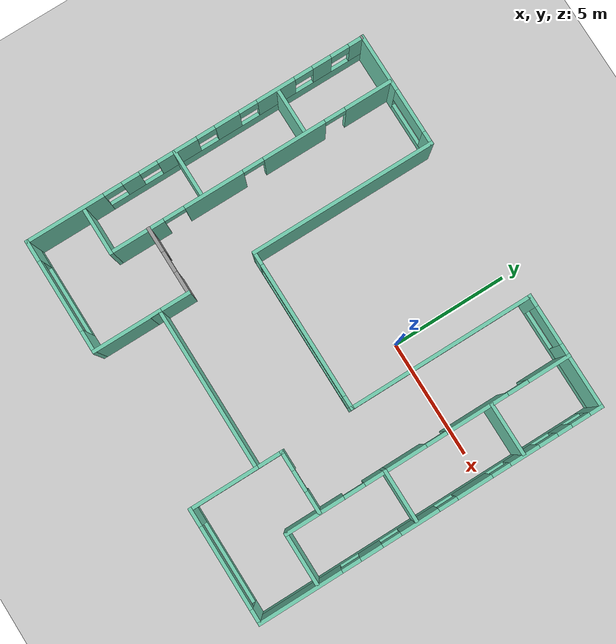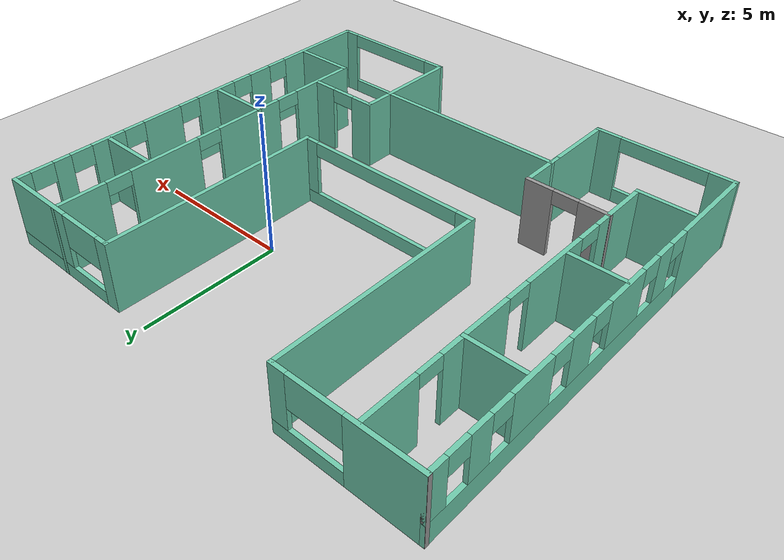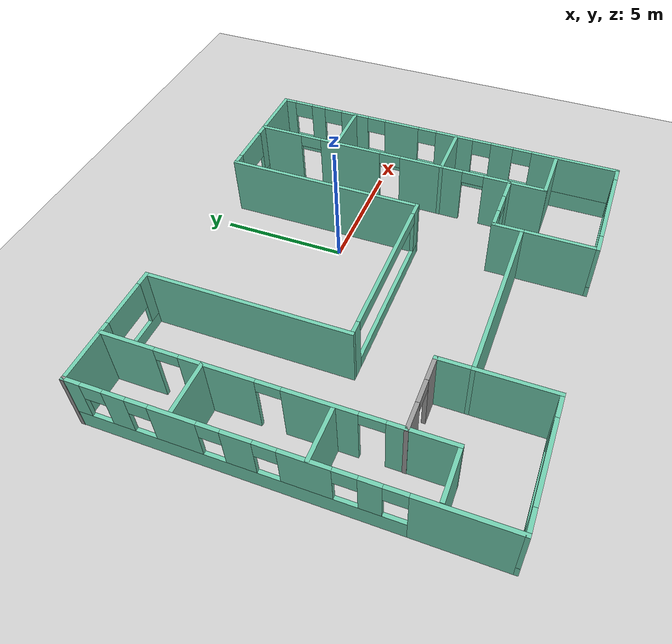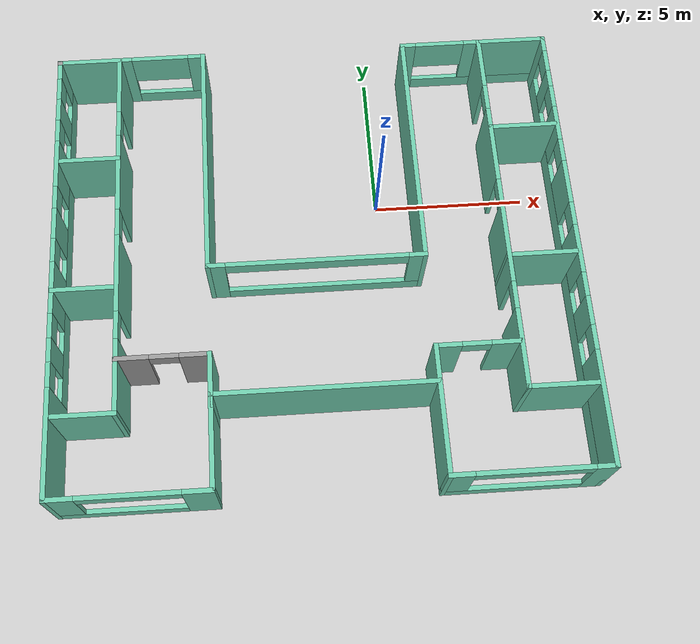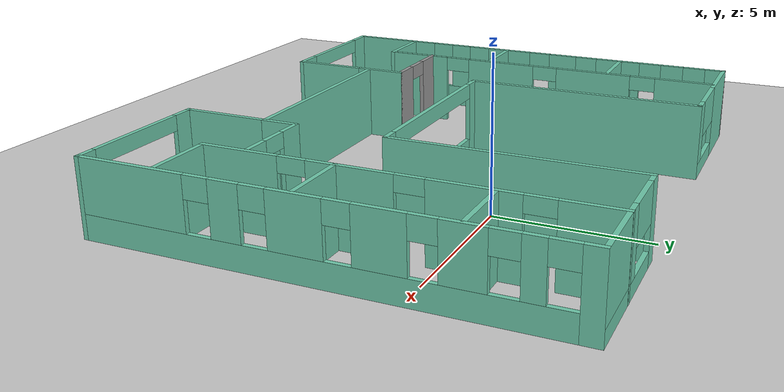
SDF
<sdf version="1.6">
 <world name="default">
  <model name="ground_plane">
   <static>1</static>
   <link name="link">
    <collision name="collision">
     <geometry><plane><normal>0 0 1</normal><size>100 100</size></plane></geometry>
     <surface>
      <contact><collide_bitmask>65535</collide_bitmask></contact>
      <friction><ode><mu>100</mu><mu2>50</mu2></ode></friction>
     </surface>
    </collision>
    <visual name="visual">
     <cast_shadows>0</cast_shadows>
     <geometry><plane><normal>0 0 1</normal><size>100 100</size></plane></geometry>
     <material>
      <script><uri>file://media/materials/scripts/gazebo.material</uri><name>Gazebo/Grey</name></script>
     </material>
    </visual>
   </link>
  </model>
  <model name="building">
   <pose>-2.2336 -2.43171 0 0 -0 0</pose>
   <link name="Wall_0">
    <collision name="Wall_0_Collision">
     <geometry><box><size>0.16 0.15 2.5</size></box></geometry>
     <pose>0 0 1.25 0 -0 0</pose>
    </collision>
    <visual name="Wall_0_Visual">
     <pose>0 0 1.25 0 -0 0</pose>
     <geometry><box><size>0.16 0.15 2.5</size></box></geometry>
     <material>
      <script><uri>file://media/materials/scripts/gazebo.material</uri><name>Gazebo/Grey</name></script>
      <ambient>1 1 1 1</ambient>
     </material>
     <meta><layer>0</layer></meta>
    </visual>
    <pose>-8.275 7.4223 0 0 -0 0</pose>
   </link>
   <link name="Wall_1">
    <pose>-5.845 7.4223 0 0 -0 0</pose>
    <visual name="Wall_1_Visual_0">
     <pose>-1.24921 0 1.25 0 -0 0</pose>
     <geometry><box><size>2.50157 0.15 2.5</size></box></geometry>
     <material>
      <script><uri>file://media/materials/scripts/gazebo.material</uri><name>Gazebo/Grey</name></script>
      <ambient>0.435294 0.796078 0.67451 1</ambient>
     </material>
     <meta><layer>0</layer></meta>
    </visual>
    <collision name="Wall_1_Collision_0">
     <geometry><box><size>2.50157 0.15 2.5</size></box></geometry>
     <pose>-1.24921 0 1.25 0 -0 0</pose>
    </collision>
    <visual name="Wall_1_Visual_1">
     <pose>1.25079 0 0.25 0 -0 0</pose>
     <geometry><box><size>2.49843 0.15 0.5</size></box></geometry>
     <material>
      <script><uri>file://media/materials/scripts/gazebo.material</uri><name>Gazebo/Grey</name></script>
      <ambient>0.435294 0.796078 0.67451 1</ambient>
     </material>
     <meta><layer>0</layer></meta>
    </visual>
    <collision name="Wall_1_Collision_1">
     <geometry><box><size>2.49843 0.15 0.5</size></box></geometry>
     <pose>1.25079 0 0.25 0 -0 0</pose>
    </collision>
    <visual name="Wall_1_Visual_2">
     <pose>2.20141 0 1.5 0 -0 0</pose>
     <geometry><box><size>0.597181 0.15 2</size></box></geometry>
     <material>
      <script><uri>file://media/materials/scripts/gazebo.material</uri><name>Gazebo/Grey</name></script>
      <ambient>0.435294 0.796078 0.67451 1</ambient>
     </material>
     <meta><layer>0</layer></meta>
    </visual>
    <collision name="Wall_1_Collision_2">
     <geometry><box><size>0.597181 0.15 2</size></box></geometry>
     <pose>2.20141 0 1.5 0 -0 0</pose>
    </collision>
    <visual name="Wall_1_Visual_3">
     <pose>0.952195 0 1.9 0 -0 0</pose>
     <geometry><box><size>1.90125 0.15 1.2</size></box></geometry>
     <material>
      <script><uri>file://media/materials/scripts/gazebo.material</uri><name>Gazebo/Grey</name></script>
      <ambient>0.435294 0.796078 0.67451 1</ambient>
     </material>
     <meta><layer>0</layer></meta>
    </visual>
    <collision name="Wall_1_Collision_3">
     <geometry><box><size>1.90125 0.15 1.2</size></box></geometry>
     <pose>0.952195 0 1.9 0 -0 0</pose>
    </collision>
   </link>
   <link name="Wall_10">
    <collision name="Wall_10_Collision">
     <geometry><box><size>3 0.15 2.5</size></box></geometry>
     <pose>0 0 1.25 0 -0 0</pose>
    </collision>
    <visual name="Wall_10_Visual">
     <pose>0 0 1.25 0 -0 0</pose>
     <geometry><box><size>3 0.15 2.5</size></box></geometry>
     <material>
      <script><uri>file://media/materials/scripts/gazebo.material</uri><name>Gazebo/Grey</name></script>
      <ambient>0.435294 0.796078 0.67451 1</ambient>
     </material>
     <meta><layer>0</layer></meta>
    </visual>
    <pose>-3.42 -6.0027 0 0 0 -1.5708</pose>
   </link>
   <link name="Wall_11">
    <pose>-5.845 -7.4277 0 0 -0 3.14159</pose>
    <visual name="Wall_11_Visual_0">
     <pose>-2.0178 0 1.25 0 -0 0</pose>
     <geometry><box><size>0.964396 0.15 2.5</size></box></geometry>
     <material>
      <script><uri>file://media/materials/scripts/gazebo.material</uri><name>Gazebo/Grey</name></script>
      <ambient>0.435294 0.796078 0.67451 1</ambient>
     </material>
     <meta><layer>0</layer></meta>
    </visual>
    <collision name="Wall_11_Collision_0">
     <geometry><box><size>0.964396 0.15 2.5</size></box></geometry>
     <pose>-2.0178 0 1.25 0 -0 0</pose>
    </collision>
    <visual name="Wall_11_Visual_1">
     <pose>0.482198 0 0.25 0 -0 0</pose>
     <geometry><box><size>4.0356 0.15 0.5</size></box></geometry>
     <material>
      <script><uri>file://media/materials/scripts/gazebo.material</uri><name>Gazebo/Grey</name></script>
      <ambient>0.435294 0.796078 0.67451 1</ambient>
     </material>
     <meta><layer>0</layer></meta>
    </visual>
    <collision name="Wall_11_Collision_1">
     <geometry><box><size>4.0356 0.15 0.5</size></box></geometry>
     <pose>0.482198 0 0.25 0 -0 0</pose>
    </collision>
    <visual name="Wall_11_Visual_2">
     <pose>2.0292 0 1.5 0 -0 0</pose>
     <geometry><box><size>0.941604 0.15 2</size></box></geometry>
     <material>
      <script><uri>file://media/materials/scripts/gazebo.material</uri><name>Gazebo/Grey</name></script>
      <ambient>0.435294 0.796078 0.67451 1</ambient>
     </material>
     <meta><layer>0</layer></meta>
    </visual>
    <collision name="Wall_11_Collision_2">
     <geometry><box><size>0.941604 0.15 2</size></box></geometry>
     <pose>2.0292 0 1.5 0 -0 0</pose>
    </collision>
    <visual name="Wall_11_Visual_3">
     <pose>0.011396 0 2.25 0 -0 0</pose>
     <geometry><box><size>3.094 0.15 0.5</size></box></geometry>
     <material>
      <script><uri>file://media/materials/scripts/gazebo.material</uri><name>Gazebo/Grey</name></script>
      <ambient>0.435294 0.796078 0.67451 1</ambient>
     </material>
     <meta><layer>0</layer></meta>
    </visual>
    <collision name="Wall_11_Collision_3">
     <geometry><box><size>3.094 0.15 0.5</size></box></geometry>
     <pose>0.011396 0 2.25 0 -0 0</pose>
    </collision>
   </link>
   <link name="Wall_12">
    <pose>-8.27 -0.002705 0 0 -0 1.5708</pose>
    <visual name="Wall_12_Visual_0">
     <pose>-5.78698 0 1.25 0 -0 0</pose>
     <geometry><box><size>3.42604 0.15 2.5</size></box></geometry>
     <material>
      <script><uri>file://media/materials/scripts/gazebo.material</uri><name>Gazebo/Grey</name></script>
      <ambient>0.435294 0.796078 0.67451 1</ambient>
     </material>
     <meta><layer>0</layer></meta>
    </visual>
    <collision name="Wall_12_Collision_0">
     <geometry><box><size>3.42604 0.15 2.5</size></box></geometry>
     <pose>-5.78698 0 1.25 0 -0 0</pose>
    </collision>
    <visual name="Wall_12_Visual_1">
     <pose>1.71302 0 0.4 0 -0 0</pose>
     <geometry><box><size>11.574 0.15 0.8</size></box></geometry>
     <material>
      <script><uri>file://media/materials/scripts/gazebo.material</uri><name>Gazebo/Grey</name></script>
      <ambient>0.435294 0.796078 0.67451 1</ambient>
     </material>
     <meta><layer>0</layer></meta>
    </visual>
    <collision name="Wall_12_Collision_1">
     <geometry><box><size>11.574 0.15 0.8</size></box></geometry>
     <pose>1.71302 0 0.4 0 -0 0</pose>
    </collision>
    <visual name="Wall_12_Visual_2">
     <pose>-2.89391 0 1.65 0 -0 0</pose>
     <geometry><box><size>0.760102 0.15 1.7</size></box></geometry>
     <material>
      <script><uri>file://media/materials/scripts/gazebo.material</uri><name>Gazebo/Grey</name></script>
      <ambient>0.435294 0.796078 0.67451 1</ambient>
     </material>
     <meta><layer>0</layer></meta>
    </visual>
    <collision name="Wall_12_Collision_2">
     <geometry><box><size>0.760102 0.15 1.7</size></box></geometry>
     <pose>-2.89391 0 1.65 0 -0 0</pose>
    </collision>
    <visual name="Wall_12_Visual_3">
     <pose>-0.844363 0 1.65 0 -0 0</pose>
     <geometry><box><size>1.73899 0.15 1.7</size></box></geometry>
     <material>
      <script><uri>file://media/materials/scripts/gazebo.material</uri><name>Gazebo/Grey</name></script>
      <ambient>0.435294 0.796078 0.67451 1</ambient>
     </material>
     <meta><layer>0</layer></meta>
    </visual>
    <collision name="Wall_12_Collision_3">
     <geometry><box><size>1.73899 0.15 1.7</size></box></geometry>
     <pose>-0.844363 0 1.65 0 -0 0</pose>
    </collision>
    <visual name="Wall_12_Visual_4">
     <pose>1.35813 0 1.65 0 -0 0</pose>
     <geometry><box><size>1.066 0.15 1.7</size></box></geometry>
     <material>
      <script><uri>file://media/materials/scripts/gazebo.material</uri><name>Gazebo/Grey</name></script>
      <ambient>0.435294 0.796078 0.67451 1</ambient>
     </material>
     <meta><layer>0</layer></meta>
    </visual>
    <collision name="Wall_12_Collision_4">
     <geometry><box><size>1.066 0.15 1.7</size></box></geometry>
     <pose>1.35813 0 1.65 0 -0 0</pose>
    </collision>
    <visual name="Wall_12_Visual_5">
     <pose>3.53004 0 1.65 0 -0 0</pose>
     <geometry><box><size>1.67781 0.15 1.7</size></box></geometry>
     <material>
      <script><uri>file://media/materials/scripts/gazebo.material</uri><name>Gazebo/Grey</name></script>
      <ambient>0.435294 0.796078 0.67451 1</ambient>
     </material>
     <meta><layer>0</layer></meta>
    </visual>
    <collision name="Wall_12_Collision_5">
     <geometry><box><size>1.67781 0.15 1.7</size></box></geometry>
     <pose>3.53004 0 1.65 0 -0 0</pose>
    </collision>
    <visual name="Wall_12_Visual_6">
     <pose>5.57958 0 1.65 0 -0 0</pose>
     <geometry><box><size>0.821282 0.15 1.7</size></box></geometry>
     <material>
      <script><uri>file://media/materials/scripts/gazebo.material</uri><name>Gazebo/Grey</name></script>
      <ambient>0.435294 0.796078 0.67451 1</ambient>
     </material>
     <meta><layer>0</layer></meta>
    </visual>
    <collision name="Wall_12_Collision_6">
     <geometry><box><size>0.821282 0.15 1.7</size></box></geometry>
     <pose>5.57958 0 1.65 0 -0 0</pose>
    </collision>
    <visual name="Wall_12_Visual_7">
     <pose>7.14511 0 1.65 0 -0 0</pose>
     <geometry><box><size>0.709774 0.15 1.7</size></box></geometry>
     <material>
      <script><uri>file://media/materials/scripts/gazebo.material</uri><name>Gazebo/Grey</name></script>
      <ambient>0.435294 0.796078 0.67451 1</ambient>
     </material>
     <meta><layer>0</layer></meta>
    </visual>
    <collision name="Wall_12_Collision_7">
     <geometry><box><size>0.709774 0.15 1.7</size></box></geometry>
     <pose>7.14511 0 1.65 0 -0 0</pose>
    </collision>
    <visual name="Wall_12_Visual_8">
     <pose>-3.67396 0 2.15 0 -0 0</pose>
     <geometry><box><size>0.8 0.15 0.7</size></box></geometry>
     <material>
      <script><uri>file://media/materials/scripts/gazebo.material</uri><name>Gazebo/Grey</name></script>
      <ambient>0.435294 0.796078 0.67451 1</ambient>
     </material>
     <meta><layer>0</layer></meta>
    </visual>
    <collision name="Wall_12_Collision_8">
     <geometry><box><size>0.8 0.15 0.7</size></box></geometry>
     <pose>-3.67396 0 2.15 0 -0 0</pose>
    </collision>
    <visual name="Wall_12_Visual_9">
     <pose>-2.11386 0 2.15 0 -0 0</pose>
     <geometry><box><size>0.8 0.15 0.7</size></box></geometry>
     <material>
      <script><uri>file://media/materials/scripts/gazebo.material</uri><name>Gazebo/Grey</name></script>
      <ambient>0.435294 0.796078 0.67451 1</ambient>
     </material>
     <meta><layer>0</layer></meta>
    </visual>
    <collision name="Wall_12_Collision_9">
     <geometry><box><size>0.8 0.15 0.7</size></box></geometry>
     <pose>-2.11386 0 2.15 0 -0 0</pose>
    </collision>
    <visual name="Wall_12_Visual_10">
     <pose>0.425131 0 2.15 0 -0 0</pose>
     <geometry><box><size>0.8 0.15 0.7</size></box></geometry>
     <material>
      <script><uri>file://media/materials/scripts/gazebo.material</uri><name>Gazebo/Grey</name></script>
      <ambient>0.435294 0.796078 0.67451 1</ambient>
     </material>
     <meta><layer>0</layer></meta>
    </visual>
    <collision name="Wall_12_Collision_10">
     <geometry><box><size>0.8 0.15 0.7</size></box></geometry>
     <pose>0.425131 0 2.15 0 -0 0</pose>
    </collision>
    <visual name="Wall_12_Visual_11">
     <pose>2.29114 0 2.15 0 -0 0</pose>
     <geometry><box><size>0.8 0.15 0.7</size></box></geometry>
     <material>
      <script><uri>file://media/materials/scripts/gazebo.material</uri><name>Gazebo/Grey</name></script>
      <ambient>0.435294 0.796078 0.67451 1</ambient>
     </material>
     <meta><layer>0</layer></meta>
    </visual>
    <collision name="Wall_12_Collision_11">
     <geometry><box><size>0.8 0.15 0.7</size></box></geometry>
     <pose>2.29114 0 2.15 0 -0 0</pose>
    </collision>
    <visual name="Wall_12_Visual_12">
     <pose>4.76894 0 2.15 0 -0 0</pose>
     <geometry><box><size>0.8 0.15 0.7</size></box></geometry>
     <material>
      <script><uri>file://media/materials/scripts/gazebo.material</uri><name>Gazebo/Grey</name></script>
      <ambient>0.435294 0.796078 0.67451 1</ambient>
     </material>
     <meta><layer>0</layer></meta>
    </visual>
    <collision name="Wall_12_Collision_12">
     <geometry><box><size>0.8 0.15 0.7</size></box></geometry>
     <pose>4.76894 0 2.15 0 -0 0</pose>
    </collision>
    <visual name="Wall_12_Visual_13">
     <pose>6.39023 0 2.15 0 -0 0</pose>
     <geometry><box><size>0.8 0.15 0.7</size></box></geometry>
     <material>
      <script><uri>file://media/materials/scripts/gazebo.material</uri><name>Gazebo/Grey</name></script>
      <ambient>0.435294 0.796078 0.67451 1</ambient>
     </material>
     <meta><layer>0</layer></meta>
    </visual>
    <collision name="Wall_12_Collision_13">
     <geometry><box><size>0.8 0.15 0.7</size></box></geometry>
     <pose>6.39023 0 2.15 0 -0 0</pose>
    </collision>
   </link>
   <link name="Wall_14">
    <pose>-6.2584 1.1884 0 0 0 -1.5708</pose>
    <visual name="Wall_14_Visual_0">
     <pose>-5.21539 0 1.25 0 -0 0</pose>
     <geometry><box><size>2.06921 0.15 2.5</size></box></geometry>
     <material>
      <script><uri>file://media/materials/scripts/gazebo.material</uri><name>Gazebo/Grey</name></script>
      <ambient>0.435294 0.796078 0.67451 1</ambient>
     </material>
     <meta><layer>0</layer></meta>
    </visual>
    <collision name="Wall_14_Collision_0">
     <geometry><box><size>2.06921 0.15 2.5</size></box></geometry>
     <pose>-5.21539 0 1.25 0 -0 0</pose>
    </collision>
    <visual name="Wall_14_Visual_1">
     <pose>-1.91067 0 1.25 0 -0 0</pose>
     <geometry><box><size>2.74024 0.15 2.5</size></box></geometry>
     <material>
      <script><uri>file://media/materials/scripts/gazebo.material</uri><name>Gazebo/Grey</name></script>
      <ambient>0.435294 0.796078 0.67451 1</ambient>
     </material>
     <meta><layer>0</layer></meta>
    </visual>
    <collision name="Wall_14_Collision_1">
     <geometry><box><size>2.74024 0.15 2.5</size></box></geometry>
     <pose>-1.91067 0 1.25 0 -0 0</pose>
    </collision>
    <visual name="Wall_14_Visual_2">
     <pose>1.65309 0 1.25 0 -0 0</pose>
     <geometry><box><size>2.58729 0.15 2.5</size></box></geometry>
     <material>
      <script><uri>file://media/materials/scripts/gazebo.material</uri><name>Gazebo/Grey</name></script>
      <ambient>0.435294 0.796078 0.67451 1</ambient>
     </material>
     <meta><layer>0</layer></meta>
    </visual>
    <collision name="Wall_14_Collision_2">
     <geometry><box><size>2.58729 0.15 2.5</size></box></geometry>
     <pose>1.65309 0 1.25 0 -0 0</pose>
    </collision>
    <visual name="Wall_14_Visual_3">
     <pose>5.04837 0 1.25 0 -0 0</pose>
     <geometry><box><size>2.40327 0.15 2.5</size></box></geometry>
     <material>
      <script><uri>file://media/materials/scripts/gazebo.material</uri><name>Gazebo/Grey</name></script>
      <ambient>0.435294 0.796078 0.67451 1</ambient>
     </material>
     <meta><layer>0</layer></meta>
    </visual>
    <collision name="Wall_14_Collision_3">
     <geometry><box><size>2.40327 0.15 2.5</size></box></geometry>
     <pose>5.04837 0 1.25 0 -0 0</pose>
    </collision>
    <visual name="Wall_14_Visual_4">
     <pose>-3.73079 0 2.25 0 -0 0</pose>
     <geometry><box><size>0.9 0.15 0.5</size></box></geometry>
     <material>
      <script><uri>file://media/materials/scripts/gazebo.material</uri><name>Gazebo/Grey</name></script>
      <ambient>0.435294 0.796078 0.67451 1</ambient>
     </material>
     <meta><layer>0</layer></meta>
    </visual>
    <collision name="Wall_14_Collision_4">
     <geometry><box><size>0.9 0.15 0.5</size></box></geometry>
     <pose>-3.73079 0 2.25 0 -0 0</pose>
    </collision>
    <visual name="Wall_14_Visual_5">
     <pose>-0.090551 0 2.25 0 -0 0</pose>
     <geometry><box><size>0.9 0.15 0.5</size></box></geometry>
     <material>
      <script><uri>file://media/materials/scripts/gazebo.material</uri><name>Gazebo/Grey</name></script>
      <ambient>0.435294 0.796078 0.67451 1</ambient>
     </material>
     <meta><layer>0</layer></meta>
    </visual>
    <collision name="Wall_14_Collision_5">
     <geometry><box><size>0.9 0.15 0.5</size></box></geometry>
     <pose>-0.090551 0 2.25 0 -0 0</pose>
    </collision>
    <visual name="Wall_14_Visual_6">
     <pose>3.39674 0 2.25 0 -0 0</pose>
     <geometry><box><size>0.9 0.15 0.5</size></box></geometry>
     <material>
      <script><uri>file://media/materials/scripts/gazebo.material</uri><name>Gazebo/Grey</name></script>
      <ambient>0.435294 0.796078 0.67451 1</ambient>
     </material>
     <meta><layer>0</layer></meta>
    </visual>
    <collision name="Wall_14_Collision_6">
     <geometry><box><size>0.9 0.15 0.5</size></box></geometry>
     <pose>3.39674 0 2.25 0 -0 0</pose>
    </collision>
   </link>
   <link name="Wall_15">
    <collision name="Wall_15_Collision">
     <geometry><box><size>2 0.15 2.5</size></box></geometry>
     <pose>0 0 1.25 0 -0 0</pose>
    </collision>
    <visual name="Wall_15_Visual">
     <pose>0 0 1.25 0 -0 0</pose>
     <geometry><box><size>2 0.15 2.5</size></box></geometry>
     <material>
      <script><uri>file://media/materials/scripts/gazebo.material</uri><name>Gazebo/Grey</name></script>
      <ambient>0.435294 0.796078 0.67451 1</ambient>
     </material>
     <meta><layer>0</layer></meta>
    </visual>
    <pose>-7.1834 -4.9866 0 0 -0 3.14159</pose>
   </link>
   <link name="Wall_17">
    <collision name="Wall_17_Collision">
     <geometry><box><size>2 0.15 2.5</size></box></geometry>
     <pose>0 0 1.25 0 -0 0</pose>
    </collision>
    <visual name="Wall_17_Visual">
     <pose>0 0 1.25 0 -0 0</pose>
     <geometry><box><size>2 0.15 2.5</size></box></geometry>
     <material>
      <script><uri>file://media/materials/scripts/gazebo.material</uri><name>Gazebo/Grey</name></script>
      <ambient>0.435294 0.796078 0.67451 1</ambient>
     </material>
     <meta><layer>0</layer></meta>
    </visual>
    <pose>-7.19437 3.60381 0 0 -0 3.14159</pose>
   </link>
   <link name="Wall_2">
    <collision name="Wall_2_Collision">
     <geometry><box><size>8 0.15 2.5</size></box></geometry>
     <pose>0 0 1.25 0 -0 0</pose>
    </collision>
    <visual name="Wall_2_Visual">
     <pose>0 0 1.25 0 -0 0</pose>
     <geometry><box><size>8 0.15 2.5</size></box></geometry>
     <material>
      <script><uri>file://media/materials/scripts/gazebo.material</uri><name>Gazebo/Grey</name></script>
      <ambient>0.435294 0.796078 0.67451 1</ambient>
     </material>
     <meta><layer>0</layer></meta>
    </visual>
    <pose>-3.42 3.49729 0 0 0 -1.5708</pose>
   </link>
   <link name="Wall_21">
    <collision name="Wall_21_Collision">
     <geometry><box><size>2 0.15 2.5</size></box></geometry>
     <pose>0 0 1.25 0 -0 0</pose>
    </collision>
    <visual name="Wall_21_Visual">
     <pose>0 0 1.25 0 -0 0</pose>
     <geometry><box><size>2 0.15 2.5</size></box></geometry>
     <material>
      <script><uri>file://media/materials/scripts/gazebo.material</uri><name>Gazebo/Grey</name></script>
      <ambient>0.435294 0.796078 0.67451 1</ambient>
     </material>
     <meta><layer>0</layer></meta>
    </visual>
    <pose>-7.33273 -0.954134 0 0 -0 0</pose>
   </link>
   <link name="Wall_26">
    <pose>-4.84436 -3.30958 0 0 -0 0</pose>
    <visual name="Wall_26_Visual_0">
     <pose>-0.953335 0 1.25 0 -0 0</pose>
     <geometry><box><size>1.09333 0.15 2.5</size></box></geometry>
     <material>
      <script><uri>file://media/materials/scripts/gazebo.material</uri><name>Gazebo/Grey</name></script>
      <ambient>1 1 1 1</ambient>
     </material>
     <meta><layer>0</layer></meta>
    </visual>
    <collision name="Wall_26_Collision_0">
     <geometry><box><size>1.09333 0.15 2.5</size></box></geometry>
     <pose>-0.953335 0 1.25 0 -0 0</pose>
    </collision>
    <visual name="Wall_26_Visual_1">
     <pose>0.996665 0 1.25 0 -0 0</pose>
     <geometry><box><size>1.00667 0.15 2.5</size></box></geometry>
     <material>
      <script><uri>file://media/materials/scripts/gazebo.material</uri><name>Gazebo/Grey</name></script>
      <ambient>1 1 1 1</ambient>
     </material>
     <meta><layer>0</layer></meta>
    </visual>
    <collision name="Wall_26_Collision_1">
     <geometry><box><size>1.00667 0.15 2.5</size></box></geometry>
     <pose>0.996665 0 1.25 0 -0 0</pose>
    </collision>
    <visual name="Wall_26_Visual_2">
     <pose>0.043331 0 2.25 0 -0 0</pose>
     <geometry><box><size>0.9 0.15 0.5</size></box></geometry>
     <material>
      <script><uri>file://media/materials/scripts/gazebo.material</uri><name>Gazebo/Grey</name></script>
      <ambient>1 1 1 1</ambient>
     </material>
     <meta><layer>0</layer></meta>
    </visual>
    <collision name="Wall_26_Collision_2">
     <geometry><box><size>0.9 0.15 0.5</size></box></geometry>
     <pose>0.043331 0 2.25 0 -0 0</pose>
    </collision>
   </link>
   <link name="Wall_27">
    <collision name="Wall_27_Collision">
     <geometry><box><size>1.75 0.15 2.5</size></box></geometry>
     <pose>0 0 1.25 0 -0 0</pose>
    </collision>
    <visual name="Wall_27_Visual">
     <pose>0 0 1.25 0 -0 0</pose>
     <geometry><box><size>1.75 0.15 2.5</size></box></geometry>
     <material>
      <script><uri>file://media/materials/scripts/gazebo.material</uri><name>Gazebo/Grey</name></script>
      <ambient>0.435294 0.796078 0.67451 1</ambient>
     </material>
     <meta><layer>0</layer></meta>
    </visual>
    <pose>-3.41936 -4.10958 0 0 0 -1.5708</pose>
   </link>
   <link name="Wall_29">
    <pose>6.05856 1.2527 0 0 0 -1.5708</pose>
    <visual name="Wall_29_Visual_0">
     <pose>-5.3209 0 1.25 0 -0 0</pose>
     <geometry><box><size>1.8582 0.15 2.5</size></box></geometry>
     <material>
      <script><uri>file://media/materials/scripts/gazebo.material</uri><name>Gazebo/Grey</name></script>
      <ambient>0.435294 0.796078 0.67451 1</ambient>
     </material>
     <meta><layer>0</layer></meta>
    </visual>
    <collision name="Wall_29_Collision_0">
     <geometry><box><size>1.8582 0.15 2.5</size></box></geometry>
     <pose>-5.3209 0 1.25 0 -0 0</pose>
    </collision>
    <visual name="Wall_29_Visual_1">
     <pose>-2.15227 0 1.25 0 -0 0</pose>
     <geometry><box><size>2.67906 0.15 2.5</size></box></geometry>
     <material>
      <script><uri>file://media/materials/scripts/gazebo.material</uri><name>Gazebo/Grey</name></script>
      <ambient>0.435294 0.796078 0.67451 1</ambient>
     </material>
     <meta><layer>0</layer></meta>
    </visual>
    <collision name="Wall_29_Collision_1">
     <geometry><box><size>2.67906 0.15 2.5</size></box></geometry>
     <pose>-2.15227 0 1.25 0 -0 0</pose>
    </collision>
    <visual name="Wall_29_Visual_2">
     <pose>1.42679 0 1.25 0 -0 0</pose>
     <geometry><box><size>2.67906 0.15 2.5</size></box></geometry>
     <material>
      <script><uri>file://media/materials/scripts/gazebo.material</uri><name>Gazebo/Grey</name></script>
      <ambient>0.435294 0.796078 0.67451 1</ambient>
     </material>
     <meta><layer>0</layer></meta>
    </visual>
    <collision name="Wall_29_Collision_2">
     <geometry><box><size>2.67906 0.15 2.5</size></box></geometry>
     <pose>1.42679 0 1.25 0 -0 0</pose>
    </collision>
    <visual name="Wall_29_Visual_3">
     <pose>4.95816 0 1.25 0 -0 0</pose>
     <geometry><box><size>2.58368 0.15 2.5</size></box></geometry>
     <material>
      <script><uri>file://media/materials/scripts/gazebo.material</uri><name>Gazebo/Grey</name></script>
      <ambient>0.435294 0.796078 0.67451 1</ambient>
     </material>
     <meta><layer>0</layer></meta>
    </visual>
    <collision name="Wall_29_Collision_3">
     <geometry><box><size>2.58368 0.15 2.5</size></box></geometry>
     <pose>4.95816 0 1.25 0 -0 0</pose>
    </collision>
    <visual name="Wall_29_Visual_4">
     <pose>-3.9418 0 2.25 0 -0 0</pose>
     <geometry><box><size>0.9 0.15 0.5</size></box></geometry>
     <material>
      <script><uri>file://media/materials/scripts/gazebo.material</uri><name>Gazebo/Grey</name></script>
      <ambient>0.435294 0.796078 0.67451 1</ambient>
     </material>
     <meta><layer>0</layer></meta>
    </visual>
    <collision name="Wall_29_Collision_4">
     <geometry><box><size>0.9 0.15 0.5</size></box></geometry>
     <pose>-3.9418 0 2.25 0 -0 0</pose>
    </collision>
    <visual name="Wall_29_Visual_5">
     <pose>-0.36274 0 2.25 0 -0 0</pose>
     <geometry><box><size>0.9 0.15 0.5</size></box></geometry>
     <material>
      <script><uri>file://media/materials/scripts/gazebo.material</uri><name>Gazebo/Grey</name></script>
      <ambient>0.435294 0.796078 0.67451 1</ambient>
     </material>
     <meta><layer>0</layer></meta>
    </visual>
    <collision name="Wall_29_Collision_5">
     <geometry><box><size>0.9 0.15 0.5</size></box></geometry>
     <pose>-0.36274 0 2.25 0 -0 0</pose>
    </collision>
    <visual name="Wall_29_Visual_6">
     <pose>3.21632 0 2.25 0 -0 0</pose>
     <geometry><box><size>0.9 0.15 0.5</size></box></geometry>
     <material>
      <script><uri>file://media/materials/scripts/gazebo.material</uri><name>Gazebo/Grey</name></script>
      <ambient>0.435294 0.796078 0.67451 1</ambient>
     </material>
     <meta><layer>0</layer></meta>
    </visual>
    <collision name="Wall_29_Collision_6">
     <geometry><box><size>0.9 0.15 0.5</size></box></geometry>
     <pose>3.21632 0 2.25 0 -0 0</pose>
    </collision>
   </link>
   <link name="Wall_3">
    <pose>0.005 -0.427706 0 0 -0 0</pose>
    <visual name="Wall_3_Visual_0">
     <pose>-3.19054 0 1.25 0 -0 0</pose>
     <geometry><box><size>0.618927 0.15 2.5</size></box></geometry>
     <material>
      <script><uri>file://media/materials/scripts/gazebo.material</uri><name>Gazebo/Grey</name></script>
      <ambient>0.435294 0.796078 0.67451 1</ambient>
     </material>
     <meta><layer>0</layer></meta>
    </visual>
    <collision name="Wall_3_Collision_0">
     <geometry><box><size>0.618927 0.15 2.5</size></box></geometry>
     <pose>-3.19054 0 1.25 0 -0 0</pose>
    </collision>
    <visual name="Wall_3_Visual_1">
     <pose>0.309464 0 0.25 0 -0 0</pose>
     <geometry><box><size>6.38107 0.15 0.5</size></box></geometry>
     <material>
      <script><uri>file://media/materials/scripts/gazebo.material</uri><name>Gazebo/Grey</name></script>
      <ambient>0.435294 0.796078 0.67451 1</ambient>
     </material>
     <meta><layer>0</layer></meta>
    </visual>
    <collision name="Wall_3_Collision_1">
     <geometry><box><size>6.38107 0.15 0.5</size></box></geometry>
     <pose>0.309464 0 0.25 0 -0 0</pose>
    </collision>
    <visual name="Wall_3_Visual_2">
     <pose>3.20246 0 1.5 0 -0 0</pose>
     <geometry><box><size>0.595073 0.15 2</size></box></geometry>
     <material>
      <script><uri>file://media/materials/scripts/gazebo.material</uri><name>Gazebo/Grey</name></script>
      <ambient>0.435294 0.796078 0.67451 1</ambient>
     </material>
     <meta><layer>0</layer></meta>
    </visual>
    <collision name="Wall_3_Collision_2">
     <geometry><box><size>0.595073 0.15 2</size></box></geometry>
     <pose>3.20246 0 1.5 0 -0 0</pose>
    </collision>
    <visual name="Wall_3_Visual_3">
     <pose>0.011927 0 2.25 0 -0 0</pose>
     <geometry><box><size>5.786 0.15 0.5</size></box></geometry>
     <material>
      <script><uri>file://media/materials/scripts/gazebo.material</uri><name>Gazebo/Grey</name></script>
      <ambient>0.435294 0.796078 0.67451 1</ambient>
     </material>
     <meta><layer>0</layer></meta>
    </visual>
    <collision name="Wall_3_Collision_3">
     <geometry><box><size>5.786 0.15 0.5</size></box></geometry>
     <pose>0.011927 0 2.25 0 -0 0</pose>
    </collision>
   </link>
   <link name="Wall_34">
    <collision name="Wall_34_Collision">
     <geometry><box><size>2.25 0.15 2.5</size></box></geometry>
     <pose>0 0 1.25 0 -0 0</pose>
    </collision>
    <visual name="Wall_34_Visual">
     <pose>0 0 1.25 0 -0 0</pose>
     <geometry><box><size>2.25 0.15 2.5</size></box></geometry>
     <material>
      <script><uri>file://media/materials/scripts/gazebo.material</uri><name>Gazebo/Grey</name></script>
      <ambient>0.435294 0.796078 0.67451 1</ambient>
     </material>
     <meta><layer>0</layer></meta>
    </visual>
    <pose>7.13909 4.03207 0 0 -0 0</pose>
   </link>
   <link name="Wall_36">
    <collision name="Wall_36_Collision">
     <geometry><box><size>2.25 0.15 2.5</size></box></geometry>
     <pose>0 0 1.25 0 -0 0</pose>
    </collision>
    <visual name="Wall_36_Visual">
     <pose>0 0 1.25 0 -0 0</pose>
     <geometry><box><size>2.25 0.15 2.5</size></box></geometry>
     <material>
      <script><uri>file://media/materials/scripts/gazebo.material</uri><name>Gazebo/Grey</name></script>
      <ambient>0.435294 0.796078 0.67451 1</ambient>
     </material>
     <meta><layer>0</layer></meta>
    </visual>
    <pose>7.1085 -0.617642 0 0 -0 0</pose>
   </link>
   <link name="Wall_38">
    <collision name="Wall_38_Collision">
     <geometry><box><size>2.25 0.15 2.5</size></box></geometry>
     <pose>0 0 1.25 0 -0 0</pose>
    </collision>
    <visual name="Wall_38_Visual">
     <pose>0 0 1.25 0 -0 0</pose>
     <geometry><box><size>2.25 0.15 2.5</size></box></geometry>
     <material>
      <script><uri>file://media/materials/scripts/gazebo.material</uri><name>Gazebo/Grey</name></script>
      <ambient>0.435294 0.796078 0.67451 1</ambient>
     </material>
     <meta><layer>0</layer></meta>
    </visual>
    <pose>7.10856 -4.9223 0 0 -0 0</pose>
   </link>
   <link name="Wall_4">
    <collision name="Wall_4_Collision">
     <geometry><box><size>8 0.15 2.5</size></box></geometry>
     <pose>0 0 1.25 0 -0 0</pose>
    </collision>
    <visual name="Wall_4_Visual">
     <pose>0 0 1.25 0 -0 0</pose>
     <geometry><box><size>8 0.15 2.5</size></box></geometry>
     <material>
      <script><uri>file://media/materials/scripts/gazebo.material</uri><name>Gazebo/Grey</name></script>
      <ambient>0.435294 0.796078 0.67451 1</ambient>
     </material>
     <meta><layer>0</layer></meta>
    </visual>
    <pose>3.43 3.49729 0 0 -0 1.5708</pose>
   </link>
   <link name="Wall_40">
    <collision name="Wall_40_Collision">
     <geometry><box><size>1.25 0.15 2.5</size></box></geometry>
     <pose>0 0 1.25 0 -0 0</pose>
    </collision>
    <visual name="Wall_40_Visual">
     <pose>0 0 1.25 0 -0 0</pose>
     <geometry><box><size>1.25 0.15 2.5</size></box></geometry>
     <material>
      <script><uri>file://media/materials/scripts/gazebo.material</uri><name>Gazebo/Grey</name></script>
      <ambient>0.435294 0.796078 0.67451 1</ambient>
     </material>
     <meta><layer>0</layer></meta>
    </visual>
    <pose>3.43 -4.02771 0 0 -0 1.5708</pose>
   </link>
   <link name="Wall_41">
    <pose>4.73 -3.4777 0 0 -0 0</pose>
    <visual name="Wall_41_Visual_0">
     <pose>-0.936531 0 1.25 0 -0 0</pose>
     <geometry><box><size>0.876937 0.15 2.5</size></box></geometry>
     <material>
      <script><uri>file://media/materials/scripts/gazebo.material</uri><name>Gazebo/Grey</name></script>
      <ambient>0.435294 0.796078 0.67451 1</ambient>
     </material>
     <meta><layer>0</layer></meta>
    </visual>
    <collision name="Wall_41_Collision_0">
     <geometry><box><size>0.876937 0.15 2.5</size></box></geometry>
     <pose>-0.936531 0 1.25 0 -0 0</pose>
    </collision>
    <visual name="Wall_41_Visual_1">
     <pose>0.888469 0 1.25 0 -0 0</pose>
     <geometry><box><size>0.973063 0.15 2.5</size></box></geometry>
     <material>
      <script><uri>file://media/materials/scripts/gazebo.material</uri><name>Gazebo/Grey</name></script>
      <ambient>0.435294 0.796078 0.67451 1</ambient>
     </material>
     <meta><layer>0</layer></meta>
    </visual>
    <collision name="Wall_41_Collision_1">
     <geometry><box><size>0.973063 0.15 2.5</size></box></geometry>
     <pose>0.888469 0 1.25 0 -0 0</pose>
    </collision>
    <visual name="Wall_41_Visual_2">
     <pose>-0.048063 0 2.25 0 -0 0</pose>
     <geometry><box><size>0.9 0.15 0.5</size></box></geometry>
     <material>
      <script><uri>file://media/materials/scripts/gazebo.material</uri><name>Gazebo/Grey</name></script>
      <ambient>0.435294 0.796078 0.67451 1</ambient>
     </material>
     <meta><layer>0</layer></meta>
    </visual>
    <collision name="Wall_41_Collision_2">
     <geometry><box><size>0.9 0.15 0.5</size></box></geometry>
     <pose>-0.048063 0 2.25 0 -0 0</pose>
    </collision>
   </link>
   <link name="Wall_5">
    <pose>5.855 7.4223 0 0 -0 0</pose>
    <visual name="Wall_5_Visual_0">
     <pose>-2.23537 0 1.25 0 -0 0</pose>
     <geometry><box><size>0.529264 0.15 2.5</size></box></geometry>
     <material>
      <script><uri>file://media/materials/scripts/gazebo.material</uri><name>Gazebo/Grey</name></script>
      <ambient>0.435294 0.796078 0.67451 1</ambient>
     </material>
     <meta><layer>0</layer></meta>
    </visual>
    <collision name="Wall_5_Collision_0">
     <geometry><box><size>0.529264 0.15 2.5</size></box></geometry>
     <pose>-2.23537 0 1.25 0 -0 0</pose>
    </collision>
    <visual name="Wall_5_Visual_1">
     <pose>0.264632 0 0.25 0 -0 0</pose>
     <geometry><box><size>4.47074 0.15 0.5</size></box></geometry>
     <material>
      <script><uri>file://media/materials/scripts/gazebo.material</uri><name>Gazebo/Grey</name></script>
      <ambient>0.435294 0.796078 0.67451 1</ambient>
     </material>
     <meta><layer>0</layer></meta>
    </visual>
    <collision name="Wall_5_Collision_1">
     <geometry><box><size>4.47074 0.15 0.5</size></box></geometry>
     <pose>0.264632 0 0.25 0 -0 0</pose>
    </collision>
    <visual name="Wall_5_Visual_2">
     <pose>1.09289 0 1.5 0 -0 0</pose>
     <geometry><box><size>2.81421 0.15 2</size></box></geometry>
     <material>
      <script><uri>file://media/materials/scripts/gazebo.material</uri><name>Gazebo/Grey</name></script>
      <ambient>0.435294 0.796078 0.67451 1</ambient>
     </material>
     <meta><layer>0</layer></meta>
    </visual>
    <collision name="Wall_5_Collision_2">
     <geometry><box><size>2.81421 0.15 2</size></box></geometry>
     <pose>1.09289 0 1.5 0 -0 0</pose>
    </collision>
    <visual name="Wall_5_Visual_3">
     <pose>-1.14247 0 1.9 0 -0 0</pose>
     <geometry><box><size>1.65653 0.15 1.2</size></box></geometry>
     <material>
      <script><uri>file://media/materials/scripts/gazebo.material</uri><name>Gazebo/Grey</name></script>
      <ambient>0.435294 0.796078 0.67451 1</ambient>
     </material>
     <meta><layer>0</layer></meta>
    </visual>
    <collision name="Wall_5_Collision_3">
     <geometry><box><size>1.65653 0.15 1.2</size></box></geometry>
     <pose>-1.14247 0 1.9 0 -0 0</pose>
    </collision>
   </link>
   <link name="Wall_6">
    <pose>8.28 -0.002705 0 0 0 -1.5708</pose>
    <visual name="Wall_6_Visual_0">
     <pose>-7.20629 0 1.25 0 -0 0</pose>
     <geometry><box><size>0.587413 0.15 2.5</size></box></geometry>
     <material>
      <script><uri>file://media/materials/scripts/gazebo.material</uri><name>Gazebo/Grey</name></script>
      <ambient>0.435294 0.796078 0.67451 1</ambient>
     </material>
     <meta><layer>0</layer></meta>
    </visual>
    <collision name="Wall_6_Collision_0">
     <geometry><box><size>0.587413 0.15 2.5</size></box></geometry>
     <pose>-7.20629 0 1.25 0 -0 0</pose>
    </collision>
    <visual name="Wall_6_Visual_1">
     <pose>0.293707 0 0.4 0 -0 0</pose>
     <geometry><box><size>14.4126 0.15 0.8</size></box></geometry>
     <material>
      <script><uri>file://media/materials/scripts/gazebo.material</uri><name>Gazebo/Grey</name></script>
      <ambient>0.435294 0.796078 0.67451 1</ambient>
     </material>
     <meta><layer>0</layer></meta>
    </visual>
    <collision name="Wall_6_Collision_1">
     <geometry><box><size>14.4126 0.15 0.8</size></box></geometry>
     <pose>0.293707 0 0.4 0 -0 0</pose>
    </collision>
    <visual name="Wall_6_Visual_2">
     <pose>-5.8002 0 1.65 0 -0 0</pose>
     <geometry><box><size>0.624781 0.15 1.7</size></box></geometry>
     <material>
      <script><uri>file://media/materials/scripts/gazebo.material</uri><name>Gazebo/Grey</name></script>
      <ambient>0.435294 0.796078 0.67451 1</ambient>
     </material>
     <meta><layer>0</layer></meta>
    </visual>
    <collision name="Wall_6_Collision_2">
     <geometry><box><size>0.624781 0.15 1.7</size></box></geometry>
     <pose>-5.8002 0 1.65 0 -0 0</pose>
    </collision>
    <visual name="Wall_6_Visual_3">
     <pose>-4.05655 0 1.65 0 -0 0</pose>
     <geometry><box><size>1.2625 0.15 1.7</size></box></geometry>
     <material>
      <script><uri>file://media/materials/scripts/gazebo.material</uri><name>Gazebo/Grey</name></script>
      <ambient>0.435294 0.796078 0.67451 1</ambient>
     </material>
     <meta><layer>0</layer></meta>
    </visual>
    <collision name="Wall_6_Collision_3">
     <geometry><box><size>1.2625 0.15 1.7</size></box></geometry>
     <pose>-4.05655 0 1.65 0 -0 0</pose>
    </collision>
    <visual name="Wall_6_Visual_4">
     <pose>-1.86287 0 1.65 0 -0 0</pose>
     <geometry><box><size>1.52486 0.15 1.7</size></box></geometry>
     <material>
      <script><uri>file://media/materials/scripts/gazebo.material</uri><name>Gazebo/Grey</name></script>
      <ambient>0.435294 0.796078 0.67451 1</ambient>
     </material>
     <meta><layer>0</layer></meta>
    </visual>
    <collision name="Wall_6_Collision_4">
     <geometry><box><size>1.52486 0.15 1.7</size></box></geometry>
     <pose>-1.86287 0 1.65 0 -0 0</pose>
    </collision>
    <visual name="Wall_6_Visual_5">
     <pose>0.523166 0 1.65 0 -0 0</pose>
     <geometry><box><size>1.64722 0.15 1.7</size></box></geometry>
     <material>
      <script><uri>file://media/materials/scripts/gazebo.material</uri><name>Gazebo/Grey</name></script>
      <ambient>0.435294 0.796078 0.67451 1</ambient>
     </material>
     <meta><layer>0</layer></meta>
    </visual>
    <collision name="Wall_6_Collision_5">
     <geometry><box><size>1.64722 0.15 1.7</size></box></geometry>
     <pose>0.523166 0 1.65 0 -0 0</pose>
    </collision>
    <visual name="Wall_6_Visual_6">
     <pose>2.6186 0 1.65 0 -0 0</pose>
     <geometry><box><size>0.943643 0.15 1.7</size></box></geometry>
     <material>
      <script><uri>file://media/materials/scripts/gazebo.material</uri><name>Gazebo/Grey</name></script>
      <ambient>0.435294 0.796078 0.67451 1</ambient>
     </material>
     <meta><layer>0</layer></meta>
    </visual>
    <collision name="Wall_6_Collision_6">
     <geometry><box><size>0.943643 0.15 1.7</size></box></geometry>
     <pose>2.6186 0 1.65 0 -0 0</pose>
    </collision>
    <visual name="Wall_6_Visual_7">
     <pose>5.69521 0 1.65 0 -0 0</pose>
     <geometry><box><size>3.60958 0.15 1.7</size></box></geometry>
     <material>
      <script><uri>file://media/materials/scripts/gazebo.material</uri><name>Gazebo/Grey</name></script>
      <ambient>0.435294 0.796078 0.67451 1</ambient>
     </material>
     <meta><layer>0</layer></meta>
    </visual>
    <collision name="Wall_6_Collision_7">
     <geometry><box><size>3.60958 0.15 1.7</size></box></geometry>
     <pose>5.69521 0 1.65 0 -0 0</pose>
    </collision>
    <visual name="Wall_6_Visual_8">
     <pose>-6.51259 0 2.15 0 -0 0</pose>
     <geometry><box><size>0.8 0.15 0.7</size></box></geometry>
     <material>
      <script><uri>file://media/materials/scripts/gazebo.material</uri><name>Gazebo/Grey</name></script>
      <ambient>0.435294 0.796078 0.67451 1</ambient>
     </material>
     <meta><layer>0</layer></meta>
    </visual>
    <collision name="Wall_6_Collision_8">
     <geometry><box><size>0.8 0.15 0.7</size></box></geometry>
     <pose>-6.51259 0 2.15 0 -0 0</pose>
    </collision>
    <visual name="Wall_6_Visual_9">
     <pose>-5.08781 0 2.15 0 -0 0</pose>
     <geometry><box><size>0.8 0.15 0.7</size></box></geometry>
     <material>
      <script><uri>file://media/materials/scripts/gazebo.material</uri><name>Gazebo/Grey</name></script>
      <ambient>0.435294 0.796078 0.67451 1</ambient>
     </material>
     <meta><layer>0</layer></meta>
    </visual>
    <collision name="Wall_6_Collision_9">
     <geometry><box><size>0.8 0.15 0.7</size></box></geometry>
     <pose>-5.08781 0 2.15 0 -0 0</pose>
    </collision>
    <visual name="Wall_6_Visual_10">
     <pose>-3.0253 0 2.15 0 -0 0</pose>
     <geometry><box><size>0.8 0.15 0.7</size></box></geometry>
     <material>
      <script><uri>file://media/materials/scripts/gazebo.material</uri><name>Gazebo/Grey</name></script>
      <ambient>0.435294 0.796078 0.67451 1</ambient>
     </material>
     <meta><layer>0</layer></meta>
    </visual>
    <collision name="Wall_6_Collision_10">
     <geometry><box><size>0.8 0.15 0.7</size></box></geometry>
     <pose>-3.0253 0 2.15 0 -0 0</pose>
    </collision>
    <visual name="Wall_6_Visual_11">
     <pose>-0.700443 0 2.15 0 -0 0</pose>
     <geometry><box><size>0.8 0.15 0.7</size></box></geometry>
     <material>
      <script><uri>file://media/materials/scripts/gazebo.material</uri><name>Gazebo/Grey</name></script>
      <ambient>0.435294 0.796078 0.67451 1</ambient>
     </material>
     <meta><layer>0</layer></meta>
    </visual>
    <collision name="Wall_6_Collision_11">
     <geometry><box><size>0.8 0.15 0.7</size></box></geometry>
     <pose>-0.700443 0 2.15 0 -0 0</pose>
    </collision>
    <visual name="Wall_6_Visual_12">
     <pose>1.74677 0 2.15 0 -0 0</pose>
     <geometry><box><size>0.8 0.15 0.7</size></box></geometry>
     <material>
      <script><uri>file://media/materials/scripts/gazebo.material</uri><name>Gazebo/Grey</name></script>
      <ambient>0.435294 0.796078 0.67451 1</ambient>
     </material>
     <meta><layer>0</layer></meta>
    </visual>
    <collision name="Wall_6_Collision_12">
     <geometry><box><size>0.8 0.15 0.7</size></box></geometry>
     <pose>1.74677 0 2.15 0 -0 0</pose>
    </collision>
    <visual name="Wall_6_Visual_13">
     <pose>3.49042 0 2.15 0 -0 0</pose>
     <geometry><box><size>0.8 0.15 0.7</size></box></geometry>
     <material>
      <script><uri>file://media/materials/scripts/gazebo.material</uri><name>Gazebo/Grey</name></script>
      <ambient>0.435294 0.796078 0.67451 1</ambient>
     </material>
     <meta><layer>0</layer></meta>
    </visual>
    <collision name="Wall_6_Collision_13">
     <geometry><box><size>0.8 0.15 0.7</size></box></geometry>
     <pose>3.49042 0 2.15 0 -0 0</pose>
    </collision>
   </link>
   <link name="Wall_7">
    <pose>5.855 -7.4277 0 0 -0 3.14159</pose>
    <visual name="Wall_7_Visual_0">
     <pose>-2.16367 0 1.25 0 -0 0</pose>
     <geometry><box><size>0.672659 0.15 2.5</size></box></geometry>
     <material>
      <script><uri>file://media/materials/scripts/gazebo.material</uri><name>Gazebo/Grey</name></script>
      <ambient>0.435294 0.796078 0.67451 1</ambient>
     </material>
     <meta><layer>0</layer></meta>
    </visual>
    <collision name="Wall_7_Collision_0">
     <geometry><box><size>0.672659 0.15 2.5</size></box></geometry>
     <pose>-2.16367 0 1.25 0 -0 0</pose>
    </collision>
    <visual name="Wall_7_Visual_1">
     <pose>0.336329 0 0.25 0 -0 0</pose>
     <geometry><box><size>4.32734 0.15 0.5</size></box></geometry>
     <material>
      <script><uri>file://media/materials/scripts/gazebo.material</uri><name>Gazebo/Grey</name></script>
      <ambient>0.435294 0.796078 0.67451 1</ambient>
     </material>
     <meta><layer>0</layer></meta>
    </visual>
    <collision name="Wall_7_Collision_1">
     <geometry><box><size>4.32734 0.15 0.5</size></box></geometry>
     <pose>0.336329 0 0.25 0 -0 0</pose>
    </collision>
    <visual name="Wall_7_Visual_2">
     <pose>2.09783 0 1.5 0 -0 0</pose>
     <geometry><box><size>0.804341 0.15 2</size></box></geometry>
     <material>
      <script><uri>file://media/materials/scripts/gazebo.material</uri><name>Gazebo/Grey</name></script>
      <ambient>0.435294 0.796078 0.67451 1</ambient>
     </material>
     <meta><layer>0</layer></meta>
    </visual>
    <collision name="Wall_7_Collision_2">
     <geometry><box><size>0.804341 0.15 2</size></box></geometry>
     <pose>2.09783 0 1.5 0 -0 0</pose>
    </collision>
    <visual name="Wall_7_Visual_3">
     <pose>-0.065841 0 2.25 0 -0 0</pose>
     <geometry><box><size>3.523 0.15 0.5</size></box></geometry>
     <material>
      <script><uri>file://media/materials/scripts/gazebo.material</uri><name>Gazebo/Grey</name></script>
      <ambient>0.435294 0.796078 0.67451 1</ambient>
     </material>
     <meta><layer>0</layer></meta>
    </visual>
    <collision name="Wall_7_Collision_3">
     <geometry><box><size>3.523 0.15 0.5</size></box></geometry>
     <pose>-0.065841 0 2.25 0 -0 0</pose>
    </collision>
   </link>
   <link name="Wall_8">
    <collision name="Wall_8_Collision">
     <geometry><box><size>3 0.15 2.5</size></box></geometry>
     <pose>0 0 1.25 0 -0 0</pose>
    </collision>
    <visual name="Wall_8_Visual">
     <pose>0 0 1.25 0 -0 0</pose>
     <geometry><box><size>3 0.15 2.5</size></box></geometry>
     <material>
      <script><uri>file://media/materials/scripts/gazebo.material</uri><name>Gazebo/Grey</name></script>
      <ambient>0.435294 0.796078 0.67451 1</ambient>
     </material>
     <meta><layer>0</layer></meta>
    </visual>
    <pose>3.43 -6.0027 0 0 -0 1.5708</pose>
   </link>
   <link name="Wall_9">
    <collision name="Wall_9_Collision">
     <geometry><box><size>7 0.15 2.5</size></box></geometry>
     <pose>0 0 1.25 0 -0 0</pose>
    </collision>
    <visual name="Wall_9_Visual">
     <pose>0 0 1.25 0 -0 0</pose>
     <geometry><box><size>7 0.15 2.5</size></box></geometry>
     <material>
      <script><uri>file://media/materials/scripts/gazebo.material</uri><name>Gazebo/Grey</name></script>
      <ambient>0.435294 0.796078 0.67451 1</ambient>
     </material>
     <meta><layer>0</layer></meta>
    </visual>
    <pose>0.005 -4.5777 0 0 -0 3.14159</pose>
   </link>
   <static>1</static>
  </model>
 </world>
</sdf>
